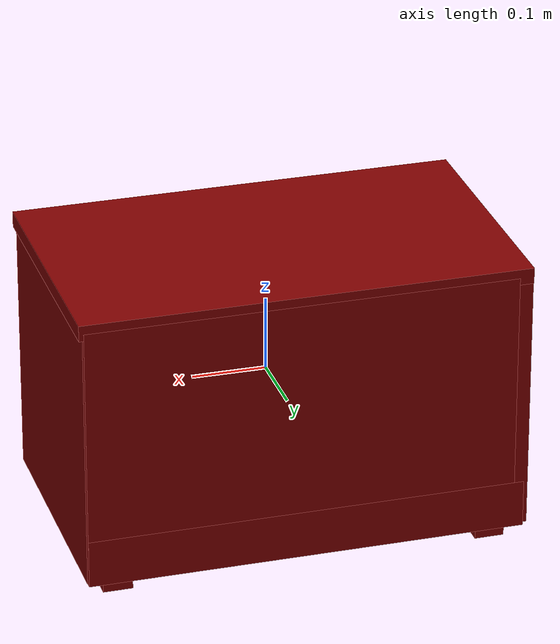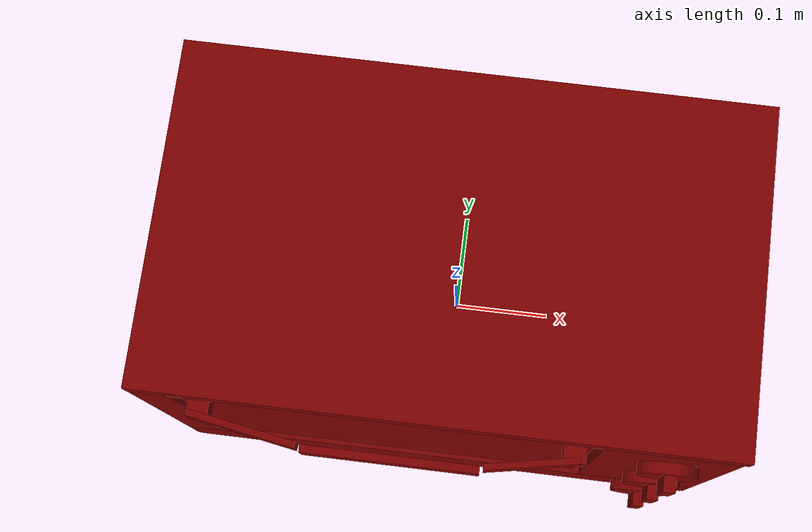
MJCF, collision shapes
<?xml version='1.0' encoding='UTF-8'?>
<mujoco model="model">
  <option timestep="0.002" gravity="0.0 0.0 -9.81"/>
  <compiler angle="radian"/>
  <asset>
    <mesh file="visuals/door.obj" name="door_vis"/>
    <mesh file="visuals/knob_function.obj" name="knob_function_vis"/>
    <mesh file="visuals/knob_temp.obj" name="knob_temp_vis"/>
    <mesh file="visuals/knob_time.obj" name="knob_time_vis"/>
    <mesh file="visuals/rack0.obj" name="rack0_vis"/>
    <mesh file="visuals/Body001.obj" name="Body001_vis"/>
    <mesh file="visuals/window.obj" name="window_vis"/>
    <texture file="visuals/T_BC001.png" name="Body001_material" type="2d"/>
    <material name="Body001_material" rgba="1 1 1 1.0" texture="Body001_material" shininess="0.1" specular="0.9"/>
    <texture file="visuals/T_BC001.png" name="door_material" type="2d"/>
    <material name="door_material" rgba="1 1 1 1.0" texture="door_material" shininess="0.1" specular="0.9"/>
    <material name="window_material" rgba="0.015459645539522171 0.015459645539522171 0.015459645539522171 0.75" shininess="0.1" specular="0.9"/>
    <texture file="visuals/T_BC001.png" name="knob_function_material" type="2d"/>
    <material name="knob_function_material" rgba="1 1 1 1.0" texture="knob_function_material" shininess="0.1" specular="0.9"/>
    <texture file="visuals/T_BC001.png" name="knob_temp_material" type="2d"/>
    <material name="knob_temp_material" rgba="1 1 1 1.0" texture="knob_temp_material" shininess="0.1" specular="0.9"/>
    <texture file="visuals/T_BC001.png" name="knob_time_material" type="2d"/>
    <material name="knob_time_material" rgba="1 1 1 1.0" texture="knob_time_material" shininess="0.1" specular="0.9"/>
    <texture file="visuals/T_BC001.png" name="rack0_material" type="2d"/>
    <material name="rack0_material" rgba="1 1 1 1.0" texture="rack0_material" shininess="0.1" specular="0.9"/>
  </asset>
  <default>
    <default class="visual">
      <geom conaffinity="0" contype="0" group="1" type="mesh"/>
    </default>
    <default class="collision">
      <geom group="0" rgba="0.5 0 0 0.5"/>
    </default>
    <default class="spawn">
      <geom group="0" rgba="1 1 1 0.5" contype="0" conaffinity="0"/>
      <site group="0" rgba="1 1 1 0.5"/>
    </default>
    <default class="region">
      <geom group="1" conaffinity="0" contype="0" rgba="0 1 0 0"/>
    </default>
  </default>
  <worldbody>
    <body>
      <body name="object">
        <geom mesh="Body001_vis" type="mesh" solimp="0.998 0.998 0.001" solref="0.001 1" friction="0.95 0.3 0.1" class="visual" material="Body001_material"/>
        <geom class="collision" type="box" pos="-0.0001343539624940604 0.019654860720038414 0.1838960349559784" size="0.29995667934417725 0.17815753817558289 0.010728752240538597" quat="1.0 0.0 0.0 0.0"/>
        <geom class="collision" type="box" pos="-0.2807686924934387 0.01965472474694252 0.009697983041405678" size="0.0186435766518116 0.1781569868326187 0.18326139450073242" quat="1.0 0.0 0.0 0.0"/>
        <geom class="collision" type="box" pos="0.22865764796733856 0.01965470239520073 0.009697983041405678" size="0.0668712928891182 0.17815706133842468 0.1832597702741623" quat="1.0 0.0 0.0 0.0"/>
        <geom class="collision" type="box" pos="-0.0005405489355325699 0.019658952951431274 -0.14570839703083038" size="0.29381346702575684 0.1781616359949112 0.03235285356640816" quat="1.0 0.0 0.0 0.0"/>
        <geom class="collision" type="box" pos="0.006126949563622475 0.16364534199237823 0.028923572972416878" size="0.28741544485092163 0.03417531028389931 0.1533634066581726" quat="1.0 0.0 0.0 0.0"/>
        <geom class="collision" type="box" pos="-0.2549467086791992 -0.014063801616430283 -0.03171567618846893" size="0.011304885149002075 0.10658194124698639 0.004841073416173458" quat="1.0 0.0 0.0 0.0"/>
        <geom class="collision" type="box" pos="0.15050257742404938 -0.014063801616430283 -0.03171567618846893" size="0.011304885149002075 0.10658195614814758 0.004841073416173458" quat="1.0 0.0 0.0 0.0"/>
        <geom class="collision" type="box" pos="-0.25301408767700195 -0.12118800729513168 -0.1854228675365448" size="0.019811633974313736 0.009857548400759697 0.011108456179499626" quat="1.0 0.0 0.0 0.0"/>
        <geom class="collision" type="box" pos="-0.25301408767700195 0.17456495761871338 -0.1854228675365448" size="0.019811633974313736 0.009857548400759697 0.011108456179499626" quat="1.0 0.0 0.0 0.0"/>
        <geom class="collision" type="box" pos="0.2519552707672119 -0.12118800729513168 -0.1854228675365448" size="0.019811633974313736 0.009857548400759697 0.011108456179499626" quat="1.0 0.0 0.0 0.0"/>
        <geom class="collision" type="box" pos="0.2519552707672119 0.17456495761871338 -0.1854228675365448" size="0.019811633974313736 0.009857548400759697 0.011108456179499626" quat="1.0 0.0 0.0 0.0"/>
        <body name="door">
          <joint axis="1.0 0.0 0.0" pos="-0.05032198131084442 -0.15732987225055695 -0.11024082452058792" limited="true" name="door_joint" range="0.0 1.5707963267948966" type="hinge" damping="1" frictionloss="1" armature=".01" stiffness="0.15" springref="-0.5"/>
          <geom mesh="door_vis" type="mesh" solimp="0.998 0.998 0.001" solref="0.001 1" friction="0.95 0.3 0.1" class="visual" material="door_material"/>
          <geom class="collision" type="box" pos="-0.0415692962706089 -0.19161993265151978 0.1519629806280136" size="0.08716800808906555 0.003919856157153845 0.013455388136208057" quat="1.0 0.0 0.0 0.0" name="door_handle_main"/>
          <geom class="collision" type="box" pos="0.09490738064050674 -0.1796828806400299 0.1519629806280136" size="0.04682117700576782 0.00336792366579175 0.013455397449433804" quat="0.995638370513916 0.0 0.0 0.09329642355442047"/>
          <geom class="collision" type="box" pos="-0.18827158212661743 -0.179634228348732 0.1519629806280136" size="0.05545705184340477 0.0033679234329611063 0.013455397449433804" quat="0.996262788772583 0.0 -0.0 -0.08637378364801407"/>
          <geom class="collision" type="box" pos="0.13471080362796783 -0.16531458497047424 0.1519629806280136" size="0.011204984039068222 0.009104401804506779 0.010466745123267174" quat="1.0 0.0 0.0 0.0"/>
          <geom class="collision" type="box" pos="-0.2329380363225937 -0.16318267583847046 0.1519629806280136" size="0.01068737730383873 0.009104405529797077 0.010466748848557472" quat="1.0 0.0 0.0 0.0"/>
          <geom class="collision" type="box" pos="-0.050102297216653824 -0.15111681818962097 0.03310017287731171" size="0.20479129254817963 0.0014656165149062872 0.13365909457206726" quat="1.0 0.0 0.0 0.0" name="door_main"/>
          <body name="window">
            <geom mesh="window_vis" type="mesh" solimp="0.998 0.998 0.001" solref="0.001 1" friction="0.95 0.3 0.1" class="visual" material="window_material"/>
            <geom class="collision" type="box" pos="-0.050102297216653824 -0.1530773788690567 0.03310017287731171" size="0.20479129254817963 0.0014656183775514364 0.13365909457206726" quat="1.0 0.0 0.0 0.0"/>
          </body>
        </body>
        <body name="knob_function">
          <joint axis="0.0 1.0 0.0" pos="0.2319774478673935 -0.17202603816986084 0.0008192092645913363" limited="true" name="knob_function_joint" range="0.0 4.991641660703782" type="hinge" damping="0.05" armature="1" frictionloss="0.75"/>
          <geom mesh="knob_function_vis" type="mesh" solimp="0.998 0.998 0.001" solref="0.001 1" friction="0.95 0.3 0.1" class="visual" material="knob_function_material"/>
          <geom class="collision" type="cylinder" pos="0.2319774478673935 -0.1665044128894806 0.0008192090317606926" size="0.030874023213982582 0.005967725999653339" quat="0.7071067094802856 0.70710688829422 -1.5700926965105832e-16 1.2790030626010778e-23" friction="100 0.5 0.01"/>
          <geom class="collision" type="box" pos="0.2319774478673935 -0.17815320193767548 0.0008192090317606926" size="0.006241064053028822 0.010996297001838684 0.022945808246731758" quat="1.0 0.0 0.0 0.0" name="knob_function_main" friction="100 0.5 0.01"/>
        </body>
        <body name="knob_temp">
          <joint axis="0.0 1.0 0.0" pos="0.2319774180650711 -0.17159435153007507 0.11367322504520416" limited="true" name="knob_temp_joint" range="0.0 4.991641660703782" type="hinge" damping="0.05" armature="1" frictionloss="0.75"/>
          <geom mesh="knob_temp_vis" type="mesh" solimp="0.998 0.998 0.001" solref="0.001 1" friction="0.95 0.3 0.1" class="visual" material="knob_temp_material"/>
          <geom class="collision" type="cylinder" pos="0.2319774180650711 -0.16607272624969482 0.11367322504520416" size="0.030874023213982582 0.005967725999653339" quat="0.7071067094802856 0.70710688829422 -1.5700926965105832e-16 1.2790030626010778e-23" friction="100 0.5 0.01"/>
          <geom class="collision" type="box" pos="0.2319774180650711 -0.1777215152978897 0.11367322504520416" size="0.006241065450012684 0.010996297001838684 0.022945813834667206" quat="1.0 0.0 0.0 0.0" name="knob_temp_main" friction="100 0.5 0.01"/>
        </body>
        <body name="knob_time">
          <joint axis="0.0 1.0 0.0" pos="0.2319774180650711 -0.17202600836753845 -0.11159078031778336" limited="true" name="knob_time_joint" range="0.0 4.014257279586958" type="hinge" damping="0.05" armature="1" frictionloss="0.75"/>
          <geom mesh="knob_time_vis" type="mesh" solimp="0.998 0.998 0.001" solref="0.001 1" friction="0.95 0.3 0.1" class="visual" material="knob_time_material"/>
          <geom class="collision" type="cylinder" pos="0.2319774180650711 -0.1665043830871582 -0.11159078031778336" size="0.030874023213982582 0.005967725999653339" quat="0.7071067094802856 0.70710688829422 -1.5700926965105832e-16 1.2790030626010778e-23" friction="100 0.5 0.01"/>
          <geom class="collision" type="box" pos="0.2319774180650711 -0.1781531721353531 -0.11159078031778336" size="0.006241063121706247 0.010996297001838684 0.02294580079615116" quat="1.0 0.0 0.0 0.0" name="knob_time_main" friction="100 0.5 0.01"/>
        </body>
        <body name="rack0">
          <geom class="region" name="reg_rack0" type="box" pos="-0.05004206299781799 -0.0028933025896549225 0.07801007572561502" size="0.20253582096099854 0.1172753738462925 0.09322181793302298"/>
          <joint axis="0.0 -1.0 0.0" pos="-0.050639212131500244 -0.0005906140431761742 -0.016924245283007622" limited="true" name="rack0_joint" range="0.0 0.19" type="slide" damping="1" frictionloss="1" armature=".01" stiffness="0.05"/>
          <geom mesh="rack0_vis" type="mesh" solimp="0.998 0.998 0.001" solref="0.001 1" friction="0.95 0.3 0.1" class="visual" material="rack0_material"/>
          <geom class="collision" type="box" pos="-0.050220146775245667 -0.0028000101447105408 -0.01799209602177143" size="0.2015717625617981 0.11656150966882706 0.002265059622004628" quat="1.0 0.0 0.0 0.0"/>
        </body>
        <geom class="region" name="reg_int" type="box" pos="-0.05169334262609482 -0.010414302349090576 0.029590316116809845" size="0.1896366829276085 0.1379638890028 0.14139292186498642"/>
        <geom class="region" name="reg_main" type="box" pos="0.0 0.01965893805027008 0.0" size="0.301091028213501 0.1791616061925888 0.19842831587791443"/>
      </body>
    </body>
  </worldbody>
  <actuator>
    <motor name="door_joint_actuator" joint="door_joint" gear="50"/>
    <motor name="knob_function_joint_actuator" joint="knob_function_joint" gear="50"/>
    <motor name="knob_temp_joint_actuator" joint="knob_temp_joint" gear="50"/>
    <motor name="knob_time_joint_actuator" joint="knob_time_joint" gear="50"/>
    <motor name="rack0_joint_actuator" joint="rack0_joint" gear="50"/>
  </actuator>
</mujoco>
